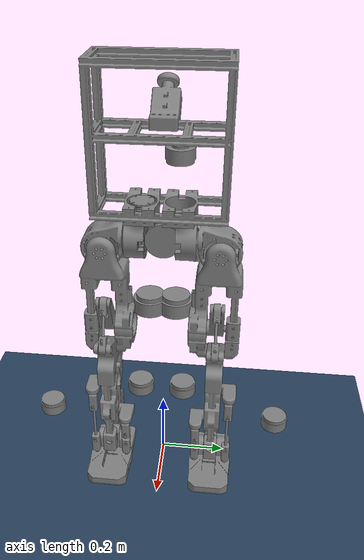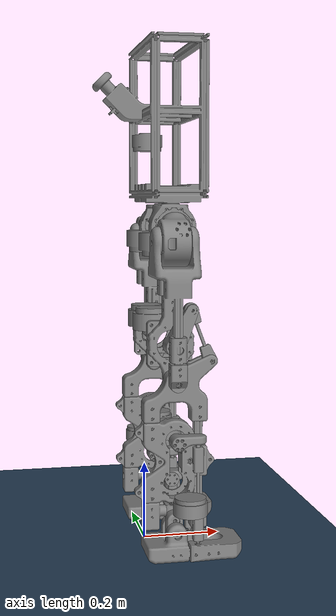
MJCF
<?xml version="1.0"?>
<mujoco model="robonex scene">
  <include file="robonex.xml"/>

  <statistic center="0 0 0.6" extent="1.2"/>

  <visual>
    <headlight diffuse="0.6 0.6 0.6" ambient="0.3 0.3 0.3" specular="0 0 0"/>
    <rgba haze="0.15 0.25 0.35 1"/>
    <global azimuth="140" elevation="-20"/>
  </visual>

  <asset>
    <texture type="skybox" builtin="gradient" rgb1="0.3 0.5 0.7" rgb2="0 0 0" width="512" height="3072"/>
    <texture type="2d" name="groundplane" builtin="checker" mark="edge" rgb1="0.2 0.3 0.4" rgb2="0.1 0.2 0.3"
      markrgb="0.8 0.8 0.8" width="300" height="300"/>
    <material name="groundplane" texture="groundplane" texuniform="true" texrepeat="5 5" reflectance="0.2"/>
  </asset>

  <worldbody>
    <light pos="0 0 3" dir="0 0 -1" directional="true"/>
    <geom name="floor" size="0 0 0.05" type="plane" material="groundplane" condim="3" contype="1" conaffinity="1" friction="0.6 0.6 0.001"/>
  </worldbody>
</mujoco>

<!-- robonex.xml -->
<mujoco model="robonex">
  <compiler angle="radian" meshdir="../meshes" autolimits="true"/>
  <option timestep="0.001" integrator="implicitfast" cone="elliptic"/>

  <default>
    <joint damping="0.01" armature="0"/>
    <default class="passive">
      <joint damping="0.01" armature="0"/>
    </default>
    <default class="act">
      <joint damping="0.2"/>
    </default>
    <default class="visual">
      <geom group="2" contype="0" conaffinity="0" density="0"/>
    </default>
    <default class="collision">
      <geom group="3" contype="1" conaffinity="1" condim="3" density="0" rgba="0.6 0.6 0.6 0.4"/>
    </default>
    <default class="motor">
      <position kp="40" kv="2"/>
    </default>
  </default>

  <asset>
    <mesh name="base_link" file="base_link.stl" scale="0.001 0.001 0.001"/>
    <mesh name="l_ankle_coupler_link_a" file="l_ankle_coupler_link_a.stl" scale="0.001 0.001 0.001"/>
    <mesh name="l_ankle_coupler_link_b" file="l_ankle_coupler_link_b.stl" scale="0.001 0.001 0.001"/>
    <mesh name="l_ankle_crank_link_a" file="l_ankle_crank_link_a.stl" scale="0.001 0.001 0.001"/>
    <mesh name="l_ankle_crank_link_b" file="l_ankle_crank_link_b.stl" scale="0.001 0.001 0.001"/>
    <mesh name="l_ankle_link" file="l_ankle_link.stl" scale="0.001 0.001 0.001"/>
    <mesh name="l_foot" file="l_foot.stl" scale="0.001 0.001 0.001"/>
    <mesh name="l_hip_pitch_link" file="l_hip_pitch_link.stl" scale="0.001 0.001 0.001"/>
    <mesh name="l_hip_roll_link" file="l_hip_roll_link.stl" scale="0.001 0.001 0.001"/>
    <mesh name="l_hip_yaw_link" file="l_hip_yaw_link.stl" scale="0.001 0.001 0.001"/>
    <mesh name="l_knee_coupler_link" file="l_knee_coupler_link.stl" scale="0.001 0.001 0.001"/>
    <mesh name="l_knee_crank_link" file="l_knee_crank_link.stl" scale="0.001 0.001 0.001"/>
    <mesh name="l_knee_link" file="l_knee_link.stl" scale="0.001 0.001 0.001"/>
    <mesh name="r_ankle_coupler_link_a" file="r_ankle_coupler_link_a.stl" scale="0.001 0.001 0.001"/>
    <mesh name="r_ankle_coupler_link_b" file="r_ankle_coupler_link_b.stl" scale="0.001 0.001 0.001"/>
    <mesh name="r_ankle_crank_link_a" file="r_ankle_crank_link_a.stl" scale="0.001 0.001 0.001"/>
    <mesh name="r_ankle_crank_link_b" file="r_ankle_crank_link_b.stl" scale="0.001 0.001 0.001"/>
    <mesh name="r_ankle_link" file="r_ankle_link.stl" scale="0.001 0.001 0.001"/>
    <mesh name="r_foot" file="r_foot.stl" scale="0.001 0.001 0.001"/>
    <mesh name="r_hip_pitch_link" file="r_hip_pitch_link.stl" scale="0.001 0.001 0.001"/>
    <mesh name="r_hip_roll_link" file="r_hip_roll_link.stl" scale="0.001 0.001 0.001"/>
    <mesh name="r_hip_yaw_link" file="r_hip_yaw_link.stl" scale="0.001 0.001 0.001"/>
    <mesh name="r_knee_coupler_link" file="r_knee_coupler_link.stl" scale="0.001 0.001 0.001"/>
    <mesh name="r_knee_crank_link" file="r_knee_crank_link.stl" scale="0.001 0.001 0.001"/>
    <mesh name="r_knee_link" file="r_knee_link.stl" scale="0.001 0.001 0.001"/>
    <mesh name="rs02_l_ankle_a" file="rs02_l_ankle_a.stl" scale="0.001 0.001 0.001"/>
    <mesh name="rs02_l_ankle_b" file="rs02_l_ankle_b.stl" scale="0.001 0.001 0.001"/>
    <mesh name="rs02_l_hip_yaw" file="rs02_l_hip_yaw.stl" scale="0.001 0.001 0.001"/>
    <mesh name="rs02_r_ankle_a" file="rs02_r_ankle_a.stl" scale="0.001 0.001 0.001"/>
    <mesh name="rs02_r_ankle_b" file="rs02_r_ankle_b.stl" scale="0.001 0.001 0.001"/>
    <mesh name="rs02_r_hip_yaw" file="rs02_r_hip_yaw.stl" scale="0.001 0.001 0.001"/>
    <mesh name="rs03_l_hip_pitch" file="rs03_l_hip_pitch.stl" scale="0.001 0.001 0.001"/>
    <mesh name="rs03_l_hip_roll" file="rs03_l_hip_roll.stl" scale="0.001 0.001 0.001"/>
    <mesh name="rs03_l_knee" file="rs03_l_knee.stl" scale="0.001 0.001 0.001"/>
    <mesh name="rs03_r_hip_pitch" file="rs03_r_hip_pitch.stl" scale="0.001 0.001 0.001"/>
    <mesh name="rs03_r_hip_roll" file="rs03_r_hip_roll.stl" scale="0.001 0.001 0.001"/>
    <mesh name="rs03_r_knee" file="rs03_r_knee.stl" scale="0.001 0.001 0.001"/>
  </asset>

  <worldbody>
    <body name="base_link" pos="0 0 1.085">
      <freejoint name="root"/>
      <inertial pos="0.032843 0.000297 -0.045593" mass="6.80147" fullinertia="0.17694424 0.14872054 0.08710167 -5.475e-05 0.01914405 -0.00012648"/>
      <geom type="mesh" mesh="base_link" pos="0 0 0" class="visual"/>
      <geom type="mesh" mesh="base_link" pos="0 0 0" class="collision"/>
      <geom type="mesh" mesh="rs02_r_hip_yaw" pos="0.060424 -0.05 -0.17975" quat="-1.17016e-07 -0.67559 0.737277 1.277e-07" class="visual"/>
      <geom type="mesh" mesh="rs02_r_hip_yaw" pos="0.060424 -0.05 -0.17975" quat="-1.17016e-07 -0.67559 0.737277 1.277e-07" class="collision"/>
      <geom type="mesh" mesh="rs02_l_hip_yaw" pos="0.060424 0.05 -0.17975" quat="-1.17016e-07 -0.67559 0.737277 1.277e-07" class="visual"/>
      <geom type="mesh" mesh="rs02_l_hip_yaw" pos="0.060424 0.05 -0.17975" quat="-1.17016e-07 -0.67559 0.737277 1.277e-07" class="collision"/>
      <body name="l_hip_yaw_link" pos="0.060424 0.05 -0.20245">
        <joint name="l_hip_yaw_joint" type="hinge" axis="0 0 1" range="-0.698132 0.698132" armature="0.0042" frictionloss="0.1" class="act"/>
        <inertial pos="-3.8e-05 0.023069 -0.059394" mass="0.9768" fullinertia="0.00108483 0.00144231 0.001013 -7.1e-07 -7.1e-07 2.234e-05"/>
        <geom type="mesh" mesh="l_hip_yaw_link" pos="2e-06 0.0001 -0.059" quat="-1.73205e-07 -0 0 1" class="visual"/>
        <geom type="mesh" mesh="l_hip_yaw_link" pos="2e-06 0.0001 -0.059" quat="-1.73205e-07 -0 0 1" class="collision"/>
        <geom type="mesh" mesh="rs03_l_hip_pitch" pos="2e-06 0.0194 -0.06001" quat="0.5 -0.5 -0.5 -0.5" class="visual"/>
        <geom type="mesh" mesh="rs03_l_hip_pitch" pos="2e-06 0.0194 -0.06001" quat="0.5 -0.5 -0.5 -0.5" class="collision"/>
        <body name="l_hip_pitch_link" pos="1e-06 0.0477 -0.0605">
          <joint name="l_hip_pitch_joint" type="hinge" axis="0 -1 0" range="-0.872665 0.872665" armature="0.02" frictionloss="0.2" class="act"/>
          <inertial pos="-0.003785 0.060976 -0.032577" mass="1.04436" fullinertia="0.00161401 0.00123883 0.00118137 9.18e-06 -6.72e-06 6.937e-05"/>
          <geom type="mesh" mesh="l_hip_pitch_link" pos="-0.00455 0.0599 -0.02575" quat="-1.73205e-07 -0 0 1" class="visual"/>
          <geom type="mesh" mesh="l_hip_pitch_link" pos="-0.00455 0.0599 -0.02575" quat="-1.73205e-07 -0 0 1" class="collision"/>
          <geom type="mesh" mesh="rs03_l_hip_roll" pos="-0.0058 0.0623 -0.03351" quat="-1.22475e-07 -0.707107 1.22474e-07 -0.707107" class="visual"/>
          <geom type="mesh" mesh="rs03_l_hip_roll" pos="-0.0058 0.0623 -0.03351" quat="-1.22475e-07 -0.707107 1.22474e-07 -0.707107" class="collision"/>
          <body name="l_hip_roll_link" pos="0.0225 0.0623 -0.034">
            <joint name="l_hip_roll_joint" type="hinge" axis="-1 0 0" range="-1.0472 0.087266" armature="0.02" frictionloss="0.2" class="act"/>
            <inertial pos="-0.034473 -0.032586 -0.198268" mass="1.71574" fullinertia="0.01832064 0.01711211 0.00412151 -1.851e-05 -6.908e-05 -0.00294612"/>
            <geom type="mesh" mesh="l_hip_roll_link" pos="-0.0348 -0.007 -0.16" quat="-1.73205e-07 0 -0 -1" class="visual"/>
            <geom type="mesh" mesh="l_hip_roll_link" pos="-0.0348 -0.007 -0.16" quat="-1.73205e-07 0 -0 -1" class="collision"/>
            <geom type="mesh" mesh="rs03_l_knee" pos="-0.03431 -0.0603 -0.255" quat="0.707107 -0.707107 0 0" class="visual"/>
            <geom type="mesh" mesh="rs03_l_knee" pos="-0.03431 -0.0603 -0.255" quat="0.707107 -0.707107 0 0" class="collision"/>
            <body name="l_knee_link" pos="-0.0348 -0.0255 -0.34">
              <joint name="l_knee_joint" type="hinge" axis="0 -1 0" range="-3.14159 3.14159" class="passive"/>
              <inertial pos="0.001621 0.025016 -0.172019" mass="1.71687" fullinertia="0.01717778 0.01952815 0.00292332 1.7e-07 -0.00118827 -1.549e-05"/>
              <geom type="mesh" mesh="l_knee_link" pos="0 0.42 -0.3696" class="visual"/>
              <geom type="mesh" mesh="l_knee_link" pos="0 0.42 -0.3696" class="collision"/>
              <geom type="mesh" mesh="rs02_l_ankle_a" pos="0 0.0252 -0.1445" quat="0.707107 -0.707107 0 0" class="visual"/>
              <geom type="mesh" mesh="rs02_l_ankle_a" pos="0 0.0252 -0.1445" quat="0.707107 -0.707107 0 0" class="collision"/>
              <geom type="mesh" mesh="rs02_l_ankle_b" pos="0 0.0248 -0.2555" quat="0.707107 0.707107 0 0" class="visual"/>
              <geom type="mesh" mesh="rs02_l_ankle_b" pos="0 0.0248 -0.2555" quat="0.707107 0.707107 0 0" class="collision"/>
              <body name="l_ankle_crank_link_a" pos="0 0.0479 -0.1445">
                <joint name="l_ankle_upper_joint" type="hinge" axis="0 -1 0" range="-0.610865 0.436332" armature="0.0042" frictionloss="0.1" class="act"/>
                <inertial pos="0.021493 0.024513 0.00427" mass="0.08456" fullinertia="1.958e-05 5.234e-05 5.951e-05 -3.25e-06 -6.24e-06 -6.5e-07"/>
                <geom type="mesh" mesh="l_ankle_crank_link_a" pos="0.026 0.0234 0" quat="0.707107 0 0 0.707107" class="visual"/>
                <geom type="mesh" mesh="l_ankle_crank_link_a" pos="0.026 0.0234 0" quat="0.707107 0 0 0.707107" class="collision"/>
                <body name="l_ankle_coupler_link_b" pos="0.05 0.0263 0">
                  <joint name="l_ankle_coupler_joint_b_x" type="hinge" axis="1 0 0" range="-0.261799 0.261799" limited="true" solreflimit="0.004 1" solimplimit="0.99 0.9999 0.0001" class="passive"/>
                  <joint name="l_ankle_coupler_joint_b_y" type="hinge" axis="0 1 0" class="passive"/>
                  <joint name="l_ankle_coupler_joint_b_z" type="hinge" axis="0 0 1" range="-0.261799 0.261799" limited="true" solreflimit="0.004 1" solimplimit="0.99 0.9999 0.0001" class="passive"/>
                  <inertial pos="0 0 -0.129" mass="0.08512" fullinertia="0.00066004 0.00065964 7.38e-06 0 0 0"/>
                  <geom type="mesh" mesh="l_ankle_coupler_link_b" pos="0 0 -0.129" class="visual"/>
                  <geom type="mesh" mesh="l_ankle_coupler_link_b" pos="0 0 -0.129" class="collision"/>
                </body>
              </body>
              <body name="l_ankle_crank_link_b" pos="0 0.0021 -0.2555">
                <joint name="l_ankle_lower_joint" type="hinge" axis="0 1 0" range="-0.436332 0.610865" armature="0.0042" frictionloss="0.1" class="act"/>
                <inertial pos="0.021493 -0.024513 0.00427" mass="0.08456" fullinertia="1.958e-05 5.234e-05 5.951e-05 3.25e-06 -6.24e-06 6.5e-07"/>
                <geom type="mesh" mesh="l_ankle_crank_link_b" pos="0.026 -0.0224 -1e-06" quat="0.707107 0 0 0.707107" class="visual"/>
                <geom type="mesh" mesh="l_ankle_crank_link_b" pos="0.026 -0.0224 -1e-06" quat="0.707107 0 0 0.707107" class="collision"/>
                <body name="l_ankle_coupler_link_a" pos="0.05 -0.0263 0">
                  <joint name="l_ankle_coupler_joint_a_x" type="hinge" axis="1 0 0" range="-0.261799 0.261799" limited="true" solreflimit="0.004 1" solimplimit="0.99 0.9999 0.0001" class="passive"/>
                  <joint name="l_ankle_coupler_joint_a_y" type="hinge" axis="0 1 0" class="passive"/>
                  <joint name="l_ankle_coupler_joint_a_z" type="hinge" axis="0 0 1" range="-0.261799 0.261799" limited="true" solreflimit="0.004 1" solimplimit="0.99 0.9999 0.0001" class="passive"/>
                  <inertial pos="0 0 -0.0735" mass="0.0741" fullinertia="0.0001211 0.00012069 6.8e-06 0 0 0"/>
                  <geom type="mesh" mesh="l_ankle_coupler_link_a" pos="0 0 -0.0735" class="visual"/>
                  <geom type="mesh" mesh="l_ankle_coupler_link_a" pos="0 0 -0.0735" class="collision"/>
                </body>
              </body>
              <body name="l_ankle_link" pos="0.02 0.025 -0.3265">
                <joint name="l_ankle_roll_joint" type="hinge" axis="1 0 0" range="-3.14159 3.14159" class="passive"/>
                <inertial pos="-0.020126 0 -0.025484" mass="0.13119" fullinertia="8.904e-05 8.901e-05 3.296e-05 0 4.2e-07 0"/>
                <geom type="mesh" mesh="l_ankle_link" pos="-0.02 0 -0.025" quat="0.707107 0 0 -0.707107" class="visual"/>
                <geom type="mesh" mesh="l_ankle_link" pos="-0.02 0 -0.025" quat="0.707107 0 0 -0.707107" class="collision"/>
                <body name="l_foot" pos="-0.02 -0.02 -0.05">
                  <joint name="l_ankle_pitch_joint" type="hinge" axis="0 -1 0" range="-3.14159 3.14159" class="passive"/>
                  <inertial pos="0.036405 0.020073 -0.039754" mass="0.78964" fullinertia="0.00144137 0.0041391 0.00501965 2.38e-06 0.0001518 -2.54e-06"/>
                  <geom type="mesh" mesh="l_foot" pos="0.045 0.02 -0.0202" quat="0.707107 0 0 0.707107" class="visual"/>
                  <geom type="mesh" mesh="l_foot" pos="0.045 0.02 -0.0202" quat="0.707107 0 0 0.707107" class="collision" friction="0.6 0.6 0.001"/>
                </body>
              </body>
            </body>
            <body name="l_knee_crank_link" pos="-0.0348 -0.032 -0.255">
              <joint name="l_knee_pitch_joint" type="hinge" axis="0 -1 0" range="-0.872665 0.087266" armature="0.02" frictionloss="0.2" class="act"/>
              <inertial pos="0.013738 0.029543 0.030625" mass="0.09538" fullinertia="0.0001081 0.00011887 4.67e-05 -2.41e-06 -3.391e-05 -5.38e-06"/>
              <geom type="mesh" mesh="l_knee_crank_link" pos="0.019334 0.026 0.041464" quat="0.596368 0.379928 -0.379928 -0.596368" class="visual"/>
              <geom type="mesh" mesh="l_knee_crank_link" pos="0.019334 0.026 0.041464" quat="0.596368 0.379928 -0.379928 -0.596368" class="collision"/>
              <body name="l_knee_coupler_link" pos="0.042262 0.021 0.090631">
                <joint name="l_knee_coupler_joint_a" type="hinge" axis="0 -1 0" range="-3.14159 3.14159" class="passive"/>
                <inertial pos="0.023792 0.01 -0.062632" mass="0.0579" fullinertia="0.00016138 0.00018632 2.851e-05 0 5.899e-05 0"/>
                <geom type="mesh" mesh="l_knee_coupler_link" pos="0.023792 0.01 -0.062633" quat="0.69549 0.127646 -0.127646 -0.69549" class="visual"/>
                <geom type="mesh" mesh="l_knee_coupler_link" pos="0.023792 0.01 -0.062633" quat="0.69549 0.127646 -0.127646 -0.69549" class="collision"/>
              </body>
            </body>
          </body>
        </body>
      </body>
      <body name="r_hip_yaw_link" pos="0.060424 -0.05 -0.20245">
        <joint name="r_hip_yaw_joint" type="hinge" axis="0 0 1" range="-0.698132 0.698132" armature="0.0042" frictionloss="0.1" class="act"/>
        <inertial pos="3.8e-05 -0.023069 -0.059394" mass="0.9768" fullinertia="0.00108483 0.00144231 0.001013 -7.1e-07 7.1e-07 -2.234e-05"/>
        <geom type="mesh" mesh="r_hip_yaw_link" pos="-2e-06 -0.0001 -0.059" class="visual"/>
        <geom type="mesh" mesh="r_hip_yaw_link" pos="-2e-06 -0.0001 -0.059" class="collision"/>
        <geom type="mesh" mesh="rs03_r_hip_pitch" pos="-2e-06 -0.0194 -0.06001" quat="0.5 0.5 -0.5 0.5" class="visual"/>
        <geom type="mesh" mesh="rs03_r_hip_pitch" pos="-2e-06 -0.0194 -0.06001" quat="0.5 0.5 -0.5 0.5" class="collision"/>
        <body name="r_hip_pitch_link" pos="-1e-06 -0.0477 -0.0605">
          <joint name="r_hip_pitch_joint" type="hinge" axis="0 1 0" range="-0.872665 0.872665" armature="0.02" frictionloss="0.2" class="act"/>
          <inertial pos="-0.003774 -0.061283 -0.032564" mass="1.04436" fullinertia="0.00161565 0.00123875 0.00118221 -8.22e-06 -6.63e-06 -6.896e-05"/>
          <geom type="mesh" mesh="r_hip_pitch_link" pos="-0.00455 -0.0601 -0.02575" quat="-1.73205e-07 0 -0 -1" class="visual"/>
          <geom type="mesh" mesh="r_hip_pitch_link" pos="-0.00455 -0.0601 -0.02575" quat="-1.73205e-07 0 -0 -1" class="collision"/>
          <geom type="mesh" mesh="rs03_r_hip_roll" pos="-0.0058 -0.0627 -0.03351" quat="-1.22475e-07 -0.707107 1.22474e-07 -0.707107" class="visual"/>
          <geom type="mesh" mesh="rs03_r_hip_roll" pos="-0.0058 -0.0627 -0.03351" quat="-1.22475e-07 -0.707107 1.22474e-07 -0.707107" class="collision"/>
          <body name="r_hip_roll_link" pos="0.0225 -0.0627 -0.034">
            <joint name="r_hip_roll_joint" type="hinge" axis="-1 0 0" range="-0.087266 1.0472" armature="0.02" frictionloss="0.2" class="act"/>
            <inertial pos="-0.034561 0.0326 -0.198312" mass="1.71574" fullinertia="0.01832691 0.01712084 0.00411921 2.205e-05 -7.902e-05 0.00294902"/>
            <geom type="mesh" mesh="r_hip_roll_link" pos="-0.0348 0.007 -0.16" quat="-1.73205e-07 0 -0 -1" class="visual"/>
            <geom type="mesh" mesh="r_hip_roll_link" pos="-0.0348 0.007 -0.16" quat="-1.73205e-07 0 -0 -1" class="collision"/>
            <geom type="mesh" mesh="rs03_r_knee" pos="-0.03431 0.0603 -0.255" quat="0.707107 0.707107 0 0" class="visual"/>
            <geom type="mesh" mesh="rs03_r_knee" pos="-0.03431 0.0603 -0.255" quat="0.707107 0.707107 0 0" class="collision"/>
            <body name="r_knee_link" pos="-0.0348 0.0255 -0.34">
              <joint name="r_knee_joint" type="hinge" axis="0 1 0" range="-3.14159 3.14159" class="passive"/>
              <inertial pos="0.001621 -0.025013 -0.172019" mass="1.71687" fullinertia="0.01717476 0.01952513 0.00292332 1.7e-06 -0.00118827 2.224e-05"/>
              <geom type="mesh" mesh="r_knee_link" pos="0 0.37 -0.32" class="visual"/>
              <geom type="mesh" mesh="r_knee_link" pos="0 0.37 -0.32" class="collision"/>
              <geom type="mesh" mesh="rs02_r_ankle_a" pos="0 -0.0252 -0.1445" quat="0.707107 0.707107 0 0" class="visual"/>
              <geom type="mesh" mesh="rs02_r_ankle_a" pos="0 -0.0252 -0.1445" quat="0.707107 0.707107 0 0" class="collision"/>
              <geom type="mesh" mesh="rs02_r_ankle_b" pos="0 -0.0248 -0.2555" quat="0.707107 -0.707107 0 0" class="visual"/>
              <geom type="mesh" mesh="rs02_r_ankle_b" pos="0 -0.0248 -0.2555" quat="0.707107 -0.707107 0 0" class="collision"/>
              <body name="r_ankle_crank_link_a" pos="0 -0.0021 -0.2555">
                <joint name="r_ankle_lower_joint" type="hinge" axis="0 -1 0" range="-0.610865 0.436332" armature="0.0042" frictionloss="0.1" class="act"/>
                <inertial pos="0.021493 0.024513 0.00427" mass="0.08456" fullinertia="1.958e-05 5.234e-05 5.951e-05 -3.25e-06 -6.24e-06 -6.5e-07"/>
                <geom type="mesh" mesh="r_ankle_crank_link_a" pos="0.026 0.0234 0" quat="0.707107 0 0 0.707107" class="visual"/>
                <geom type="mesh" mesh="r_ankle_crank_link_a" pos="0.026 0.0234 0" quat="0.707107 0 0 0.707107" class="collision"/>
                <body name="r_ankle_coupler_link_a" pos="0.05 0.0263 0">
                  <joint name="r_ankle_coupler_joint_a_x" type="hinge" axis="1 0 0" range="-0.261799 0.261799" limited="true" solreflimit="0.004 1" solimplimit="0.99 0.9999 0.0001" class="passive"/>
                  <joint name="r_ankle_coupler_joint_a_y" type="hinge" axis="0 1 0" class="passive"/>
                  <joint name="r_ankle_coupler_joint_a_z" type="hinge" axis="0 0 1" range="-0.261799 0.261799" limited="true" solreflimit="0.004 1" solimplimit="0.99 0.9999 0.0001" class="passive"/>
                  <inertial pos="0 0 -0.0735" mass="0.0741" fullinertia="0.0001211 0.00012069 6.8e-06 0 0 0"/>
                  <geom type="mesh" mesh="r_ankle_coupler_link_a" pos="0 0 -0.0735" class="visual"/>
                  <geom type="mesh" mesh="r_ankle_coupler_link_a" pos="0 0 -0.0735" class="collision"/>
                </body>
              </body>
              <body name="r_ankle_crank_link_b" pos="0 -0.0479 -0.1445">
                <joint name="r_ankle_upper_joint" type="hinge" axis="0 1 0" range="-0.436332 0.610865" armature="0.0042" frictionloss="0.1" class="act"/>
                <inertial pos="0.021493 -0.024513 0.00427" mass="0.08456" fullinertia="1.958e-05 5.234e-05 5.951e-05 3.25e-06 -6.24e-06 6.5e-07"/>
                <geom type="mesh" mesh="r_ankle_crank_link_b" pos="0.026 -0.0224 -1e-06" quat="0.707107 0 0 0.707107" class="visual"/>
                <geom type="mesh" mesh="r_ankle_crank_link_b" pos="0.026 -0.0224 -1e-06" quat="0.707107 0 0 0.707107" class="collision"/>
                <body name="r_ankle_coupler_link_b" pos="0.05 -0.0263 0">
                  <joint name="r_ankle_coupler_joint_b_x" type="hinge" axis="1 0 0" range="-0.261799 0.261799" limited="true" solreflimit="0.004 1" solimplimit="0.99 0.9999 0.0001" class="passive"/>
                  <joint name="r_ankle_coupler_joint_b_y" type="hinge" axis="0 1 0" class="passive"/>
                  <joint name="r_ankle_coupler_joint_b_z" type="hinge" axis="0 0 1" range="-0.261799 0.261799" limited="true" solreflimit="0.004 1" solimplimit="0.99 0.9999 0.0001" class="passive"/>
                  <inertial pos="0 0 -0.129" mass="0.08512" fullinertia="0.00066004 0.00065964 7.38e-06 0 0 0"/>
                  <geom type="mesh" mesh="r_ankle_coupler_link_b" pos="0 0 -0.129" class="visual"/>
                  <geom type="mesh" mesh="r_ankle_coupler_link_b" pos="0 0 -0.129" class="collision"/>
                </body>
              </body>
              <body name="r_ankle_link" pos="0.02 -0.025 -0.3265">
                <joint name="r_ankle_roll_joint" type="hinge" axis="1 0 0" range="-3.14159 3.14159" class="passive"/>
                <inertial pos="-0.020126 0 -0.025484" mass="0.13119" fullinertia="8.904e-05 8.901e-05 3.296e-05 0 4.2e-07 0"/>
                <geom type="mesh" mesh="r_ankle_link" pos="-0.02 0 -0.025" quat="0.707107 0 0 -0.707107" class="visual"/>
                <geom type="mesh" mesh="r_ankle_link" pos="-0.02 0 -0.025" quat="0.707107 0 0 -0.707107" class="collision"/>
                <body name="r_foot" pos="-0.02 -0.0215 -0.05">
                  <joint name="r_ankle_pitch_joint" type="hinge" axis="0 -1 0" range="-3.14159 3.14159" class="passive"/>
                  <inertial pos="0.036405 0.021573 -0.039754" mass="0.78964" fullinertia="0.00144137 0.0041391 0.00501965 2.38e-06 0.0001518 -2.54e-06"/>
                  <geom type="mesh" mesh="r_foot" pos="0.045 0.0215 -0.0202" quat="0.707107 0 0 0.707107" class="visual"/>
                  <geom type="mesh" mesh="r_foot" pos="0.045 0.0215 -0.0202" quat="0.707107 0 0 0.707107" class="collision" friction="0.6 0.6 0.001"/>
                </body>
              </body>
            </body>
            <body name="r_knee_crank_link" pos="-0.0348 0.032 -0.255">
              <joint name="r_knee_pitch_joint" type="hinge" axis="0 1 0" range="-0.087266 0.872665" armature="0.02" frictionloss="0.2" class="act"/>
              <inertial pos="0.013738 -0.029543 0.030625" mass="0.09538" fullinertia="0.0001081 0.00011887 4.67e-05 2.41e-06 -3.391e-05 5.38e-06"/>
              <geom type="mesh" mesh="r_knee_crank_link" pos="0.019335 -0.026 0.041464" quat="0.596368 0.379928 -0.379928 -0.596368" class="visual"/>
              <geom type="mesh" mesh="r_knee_crank_link" pos="0.019335 -0.026 0.041464" quat="0.596368 0.379928 -0.379928 -0.596368" class="collision"/>
              <body name="r_knee_coupler_link" pos="0.042262 -0.021 0.090631">
                <joint name="r_knee_coupler_joint_a" type="hinge" axis="0 -1 0" range="-3.14159 3.14159" class="passive"/>
                <inertial pos="0.023792 -0.01 -0.062632" mass="0.0579" fullinertia="0.00016138 0.00018632 2.851e-05 0 5.899e-05 0"/>
                <geom type="mesh" mesh="r_knee_coupler_link" pos="0.023792 -0.01 -0.062633" quat="0.69549 -0.127646 -0.127646 0.69549" class="visual"/>
                <geom type="mesh" mesh="r_knee_coupler_link" pos="0.023792 -0.01 -0.062633" quat="0.69549 -0.127646 -0.127646 0.69549" class="collision"/>
              </body>
            </body>
          </body>
        </body>
      </body>
    </body>
  </worldbody>

  <equality>
    <connect name="l_knee_coupler_joint_b_0" body1="l_knee_coupler_link" body2="l_knee_link" anchor="0.047584 -0.01 -0.125267" solref="0.004 1" solimp="0.99 0.9999 0.0001"/>
    <connect name="l_knee_coupler_joint_b_1" body1="l_knee_coupler_link" body2="l_knee_link" anchor="0.047584 0.01 -0.125267" solref="0.004 1" solimp="0.99 0.9999 0.0001"/>
    <connect name="r_knee_coupler_joint_b_0" body1="r_knee_coupler_link" body2="r_knee_link" anchor="0.047584 0.01 -0.125267" solref="0.004 1" solimp="0.99 0.9999 0.0001"/>
    <connect name="r_knee_coupler_joint_b_1" body1="r_knee_coupler_link" body2="r_knee_link" anchor="0.047584 -0.01 -0.125267" solref="0.004 1" solimp="0.99 0.9999 0.0001"/>
    <connect name="l_ankle_ball_c" body1="l_ankle_coupler_link_a" body2="l_foot" anchor="0 0 -0.147" solref="0.004 1" solimp="0.99 0.9999 0.0001"/>
    <connect name="l_ankle_ball_d" body1="l_ankle_coupler_link_b" body2="l_foot" anchor="0 0 -0.258" solref="0.004 1" solimp="0.99 0.9999 0.0001"/>
    <connect name="r_ankle_ball_c" body1="r_ankle_coupler_link_a" body2="r_foot" anchor="0 0 -0.147" solref="0.004 1" solimp="0.99 0.9999 0.0001"/>
    <connect name="r_ankle_ball_d" body1="r_ankle_coupler_link_b" body2="r_foot" anchor="0 0 -0.258" solref="0.004 1" solimp="0.99 0.9999 0.0001"/>
  </equality>

  <contact>
    <exclude body1="base_link" body2="l_hip_pitch_link"/>
    <exclude body1="base_link" body2="l_hip_yaw_link"/>
    <exclude body1="base_link" body2="r_hip_pitch_link"/>
    <exclude body1="base_link" body2="r_hip_yaw_link"/>
    <exclude body1="l_ankle_coupler_link_a" body2="l_ankle_coupler_link_b"/>
    <exclude body1="l_ankle_coupler_link_a" body2="l_ankle_crank_link_b"/>
    <exclude body1="l_ankle_coupler_link_a" body2="l_ankle_link"/>
    <exclude body1="l_ankle_coupler_link_a" body2="l_foot"/>
    <exclude body1="l_ankle_coupler_link_a" body2="l_knee_link"/>
    <exclude body1="l_ankle_coupler_link_b" body2="l_ankle_crank_link_a"/>
    <exclude body1="l_ankle_coupler_link_b" body2="l_ankle_link"/>
    <exclude body1="l_ankle_coupler_link_b" body2="l_foot"/>
    <exclude body1="l_ankle_coupler_link_b" body2="l_knee_link"/>
    <exclude body1="l_ankle_crank_link_a" body2="l_ankle_crank_link_b"/>
    <exclude body1="l_ankle_crank_link_a" body2="l_ankle_link"/>
    <exclude body1="l_ankle_crank_link_a" body2="l_foot"/>
    <exclude body1="l_ankle_crank_link_a" body2="l_hip_roll_link"/>
    <exclude body1="l_ankle_crank_link_a" body2="l_knee_coupler_link"/>
    <exclude body1="l_ankle_crank_link_a" body2="l_knee_link"/>
    <exclude body1="l_ankle_crank_link_b" body2="l_ankle_link"/>
    <exclude body1="l_ankle_crank_link_b" body2="l_foot"/>
    <exclude body1="l_ankle_crank_link_b" body2="l_hip_roll_link"/>
    <exclude body1="l_ankle_crank_link_b" body2="l_knee_coupler_link"/>
    <exclude body1="l_ankle_crank_link_b" body2="l_knee_link"/>
    <exclude body1="l_ankle_link" body2="l_foot"/>
    <exclude body1="l_ankle_link" body2="l_hip_roll_link"/>
    <exclude body1="l_ankle_link" body2="l_knee_coupler_link"/>
    <exclude body1="l_ankle_link" body2="l_knee_link"/>
    <exclude body1="l_foot" body2="l_knee_link"/>
    <exclude body1="l_hip_pitch_link" body2="l_hip_roll_link"/>
    <exclude body1="l_hip_pitch_link" body2="l_hip_yaw_link"/>
    <exclude body1="l_hip_pitch_link" body2="l_knee_crank_link"/>
    <exclude body1="l_hip_pitch_link" body2="l_knee_link"/>
    <exclude body1="l_hip_roll_link" body2="l_hip_yaw_link"/>
    <exclude body1="l_hip_roll_link" body2="l_knee_coupler_link"/>
    <exclude body1="l_hip_roll_link" body2="l_knee_crank_link"/>
    <exclude body1="l_hip_roll_link" body2="l_knee_link"/>
    <exclude body1="l_hip_yaw_link" body2="r_hip_yaw_link"/>
    <exclude body1="l_knee_coupler_link" body2="l_knee_crank_link"/>
    <exclude body1="l_knee_coupler_link" body2="l_knee_link"/>
    <exclude body1="l_knee_crank_link" body2="l_knee_link"/>
    <exclude body1="r_ankle_coupler_link_a" body2="r_ankle_coupler_link_b"/>
    <exclude body1="r_ankle_coupler_link_a" body2="r_ankle_crank_link_a"/>
    <exclude body1="r_ankle_coupler_link_a" body2="r_ankle_link"/>
    <exclude body1="r_ankle_coupler_link_a" body2="r_foot"/>
    <exclude body1="r_ankle_coupler_link_a" body2="r_knee_link"/>
    <exclude body1="r_ankle_coupler_link_b" body2="r_ankle_crank_link_b"/>
    <exclude body1="r_ankle_coupler_link_b" body2="r_ankle_link"/>
    <exclude body1="r_ankle_coupler_link_b" body2="r_foot"/>
    <exclude body1="r_ankle_coupler_link_b" body2="r_knee_link"/>
    <exclude body1="r_ankle_crank_link_a" body2="r_ankle_crank_link_b"/>
    <exclude body1="r_ankle_crank_link_a" body2="r_ankle_link"/>
    <exclude body1="r_ankle_crank_link_a" body2="r_foot"/>
    <exclude body1="r_ankle_crank_link_a" body2="r_hip_roll_link"/>
    <exclude body1="r_ankle_crank_link_a" body2="r_knee_coupler_link"/>
    <exclude body1="r_ankle_crank_link_a" body2="r_knee_link"/>
    <exclude body1="r_ankle_crank_link_b" body2="r_ankle_link"/>
    <exclude body1="r_ankle_crank_link_b" body2="r_foot"/>
    <exclude body1="r_ankle_crank_link_b" body2="r_hip_roll_link"/>
    <exclude body1="r_ankle_crank_link_b" body2="r_knee_coupler_link"/>
    <exclude body1="r_ankle_crank_link_b" body2="r_knee_link"/>
    <exclude body1="r_ankle_link" body2="r_foot"/>
    <exclude body1="r_ankle_link" body2="r_hip_roll_link"/>
    <exclude body1="r_ankle_link" body2="r_knee_coupler_link"/>
    <exclude body1="r_ankle_link" body2="r_knee_link"/>
    <exclude body1="r_foot" body2="r_knee_link"/>
    <exclude body1="r_hip_pitch_link" body2="r_hip_roll_link"/>
    <exclude body1="r_hip_pitch_link" body2="r_hip_yaw_link"/>
    <exclude body1="r_hip_pitch_link" body2="r_knee_crank_link"/>
    <exclude body1="r_hip_pitch_link" body2="r_knee_link"/>
    <exclude body1="r_hip_roll_link" body2="r_hip_yaw_link"/>
    <exclude body1="r_hip_roll_link" body2="r_knee_coupler_link"/>
    <exclude body1="r_hip_roll_link" body2="r_knee_crank_link"/>
    <exclude body1="r_hip_roll_link" body2="r_knee_link"/>
    <exclude body1="r_knee_coupler_link" body2="r_knee_crank_link"/>
    <exclude body1="r_knee_coupler_link" body2="r_knee_link"/>
    <exclude body1="r_knee_crank_link" body2="r_knee_link"/>
  </contact>

  <actuator>
    <position name="l_hip_yaw" joint="l_hip_yaw_joint" ctrlrange="-0.698132 0.698132" forcerange="-17 17" class="motor"/>
    <position name="l_hip_pitch" joint="l_hip_pitch_joint" ctrlrange="-0.872665 0.872665" forcerange="-60 60" class="motor"/>
    <position name="l_hip_roll" joint="l_hip_roll_joint" ctrlrange="-1.0472 0.087266" forcerange="-60 60" class="motor"/>
    <position name="l_knee_pitch" joint="l_knee_pitch_joint" ctrlrange="-0.872665 0.087266" forcerange="-60 60" class="motor"/>
    <position name="l_ankle_upper" joint="l_ankle_upper_joint" ctrlrange="-0.610865 0.436332" forcerange="-17 17" class="motor"/>
    <position name="l_ankle_lower" joint="l_ankle_lower_joint" ctrlrange="-0.436332 0.610865" forcerange="-17 17" class="motor"/>
    <position name="r_hip_yaw" joint="r_hip_yaw_joint" ctrlrange="-0.698132 0.698132" forcerange="-17 17" class="motor"/>
    <position name="r_hip_pitch" joint="r_hip_pitch_joint" ctrlrange="-0.872665 0.872665" forcerange="-60 60" class="motor"/>
    <position name="r_hip_roll" joint="r_hip_roll_joint" ctrlrange="-0.087266 1.0472" forcerange="-60 60" class="motor"/>
    <position name="r_knee_pitch" joint="r_knee_pitch_joint" ctrlrange="-0.087266 0.872665" forcerange="-60 60" class="motor"/>
    <position name="r_ankle_lower" joint="r_ankle_lower_joint" ctrlrange="-0.610865 0.436332" forcerange="-17 17" class="motor"/>
    <position name="r_ankle_upper" joint="r_ankle_upper_joint" ctrlrange="-0.436332 0.610865" forcerange="-17 17" class="motor"/>
  </actuator>

  <sensor>
    <actuatorfrc name="l_hip_yaw_trq" actuator="l_hip_yaw"/>
    <actuatorfrc name="l_hip_pitch_trq" actuator="l_hip_pitch"/>
    <actuatorfrc name="l_hip_roll_trq" actuator="l_hip_roll"/>
    <actuatorfrc name="l_knee_pitch_trq" actuator="l_knee_pitch"/>
    <actuatorfrc name="l_ankle_upper_trq" actuator="l_ankle_upper"/>
    <actuatorfrc name="l_ankle_lower_trq" actuator="l_ankle_lower"/>
    <actuatorfrc name="r_hip_yaw_trq" actuator="r_hip_yaw"/>
    <actuatorfrc name="r_hip_pitch_trq" actuator="r_hip_pitch"/>
    <actuatorfrc name="r_hip_roll_trq" actuator="r_hip_roll"/>
    <actuatorfrc name="r_knee_pitch_trq" actuator="r_knee_pitch"/>
    <actuatorfrc name="r_ankle_lower_trq" actuator="r_ankle_lower"/>
    <actuatorfrc name="r_ankle_upper_trq" actuator="r_ankle_upper"/>
  </sensor>

  <keyframe>
    <key name="home" qpos="0 0 1.085 1 0 0 0 0 0 0 0 0 0 0 0 0 0 0 0 0 0 0 0 0 0 0 0 0 0 0 0 0 0 0 0 0 0 0 0" ctrl="0 0 0 0 0 0 0 0 0 0 0 0"/>
  </keyframe>
</mujoco>
